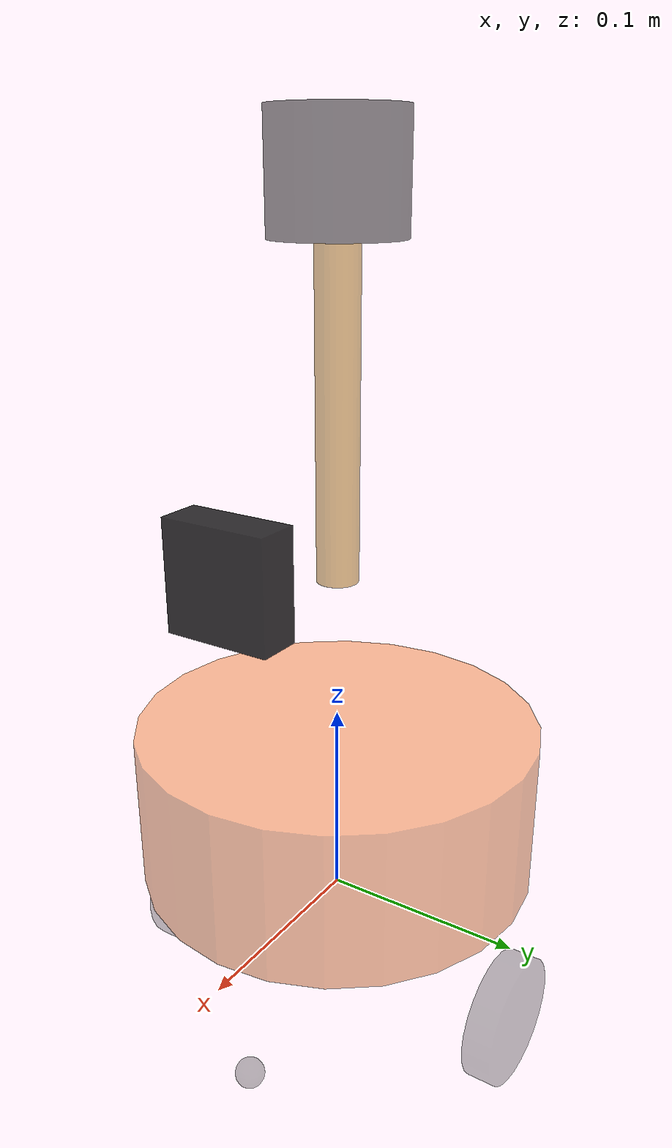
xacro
<robot name="mycar" xmlns:xacro="http://wiki.ros.org/xacro">
    <!-- 包含底盘、摄像头与雷达的 xacro 文件 -->
    <xacro:include filename="demo05_car_base.urdf.xacro" />
    <xacro:include filename="demo06_car_camera.urdf.xacro" />
    <xacro:include filename="demo07_car_laser.urdf.xacro" />
</robot>

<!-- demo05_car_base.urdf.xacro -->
<robot name="carbase" xmlns:xacro="http://wiki.ros.org/xacro">

    <xacro:property name="footprint_radius" value="0.0001" />
    <!-- 1.添加 base_footprint -->
    <link name="base_footprint">
        <visual>
            <geometry>
                <sphere radius="${footprint_radius}" />
            </geometry>
        </visual>
    </link>

    <!-- 2.添加底盘 -->
    <!--
        形状：圆柱
        半径：0.1m
        高度：0.08m
        离地间距：0.015m
     -->
    <xacro:property name="base_length" value="0.23" />
    <xacro:property name="lidi" value="0.015" />
    <xacro:property name="base_joint_z" value="${base_length / 2 + lidi}" />
    <!-- 2-1.link -->
    <link name="base_link">
    <visual>
        <geometry>
            <cylinder radius="0.1" length="0.08" />
        </geometry>

        <origin xyz="0 0 0" rpy="0 0 0" />

        <material name="baselink_color">
            <color rgba="1.0 0.5 0.2 0.5" />
        </material>
    </visual>
    </link>
    <!-- 2-2.joint -->
    <joint name="link2footprint" type="fixed">
        <parent link="base_footprint" />
        <child link="base_link" />
        <!-- z = 车体高度/2 + 离地间距 -->
        <origin xyz="0 0 0.055" rpy="0 0 0" />

    </joint>

    <!-- 3.添加驱动轮 -->
    <!--
        形状：圆柱
        半径：0.0325m
        长度：0.015m
     -->
    <xacro:property name="wheel_radius" value="0.0325" />
    <xacro:property name="wheel_length" value="0.015" />
    <xacro:property name="PI" value="3.1415927" />
    <xacro:property name="wheel_joint_z" value="${( base_length / 2 + lidi - wheel_radius) * -1}" />
    <!--
        wheel_name: left or right
        flag: 1 or -1
     -->
    <xacro:macro name="wheel_func" params="wheel_name flag">
        <!-- 3-1.link -->
        <!-- ${wheel_name} -->
        <link name="${wheel_name}_wheel">
            <visual>
                <geometry>
                    <cylinder radius="${wheel_radius}" length="${wheel_length}" />
                </geometry>

                <origin xyz="0 0 0" rpy="${PI / 2} 0 0" />

                <material name="wheel_color">
                    <color rgba="0 0 0 0.3" />
                </material>
            </visual>
        </link>

        <!-- 3-2.joint -->
        <!-- ${wheel_name}_wheel -->
        <joint name="${wheel_name}2link" type="continuous">
            <parent link="base_link" />
            <child link="${wheel_name}_wheel" />
            <!--
                x = 0
                y = 车体半径
                z = -(车体高度/2 + 离地间距 - 车轮半径)
            -->
            <origin xyz="0 ${0.1 * flag} ${wheel_joint_z}" rpy="0 0 0" />
            <axis xyz="0 1 0" />
        </joint>
    </xacro:macro>
    <!-- 调用 -->
    <xacro:wheel_func wheel_name="left" flag="1" />
    <xacro:wheel_func wheel_name="right" flag="-1" />

    <!-- 4.添加万向轮 -->
    <!--
        形状：球
        半径：0.0075m
     -->
    <xacro:property name="small_wheel_radius" value="0.0075" />
    <xacro:property name="small_joint_z" value="${( base_length / 2 + lidi - small_wheel_radius) * -1}" />
    <!-- 4-1.link -->
    <!-- front_wheel -->
    <xacro:macro name="small_wheel_func" params="small_wheel_name small_flag" >
        <link name="${small_wheel_name}_wheel">
            <visual>
                <geometry>
                    <sphere radius="0.0075" />
                </geometry>

                <origin xyz="0 0 0" rpy="0 0 0" />

                <material name="wheel_color">
                    <color rgba="0 0 0 0.3" />
                </material>
            </visual>
        </link>
        <!-- 4-2.joint -->
        <!-- front_wheel -->
        <joint name="${small_wheel_name}2link" type="continuous">
            <parent link="base_link" />
            <child link="${small_wheel_name}_wheel" />
            <!--
                x = 0
                y = 车体半径
                z = -(车体高度/2 + 离地间距 - 万向轮半径)
            -->
            <origin xyz="${0.08 * small_flag} 0 ${small_joint_z}" rpy="0 0 0" />
            <axis xyz="0 1 0" />
        </joint>
    </xacro:macro>
    <xacro:small_wheel_func small_wheel_name="front" small_flag="1" />
    <xacro:small_wheel_func small_wheel_name="back" small_flag="-1" />

</robot>

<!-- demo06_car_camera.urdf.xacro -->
<robot name="mycamera" xmlns:xacro="http://wiki.ros.org/xacro">
    <!-- camera 部件 -->
    <!-- 1.参数 -->
    <!--
        参数：
            连杆属性：厚度，宽度，高度
            关节属性：x y z
     -->
    <xacro:property name="camera_length" value="0.02" /> <!-- 摄像头长度(x) -->
    <xacro:property name="camera_width" value="0.05" /> <!-- 摄像头宽度(y) -->
    <xacro:property name="camera_height" value="0.05" /> <!-- 摄像头高度(z) -->
    <xacro:property name="joint_camera_x" value="0.08" /> <!-- 摄像头安装的x坐标 -->
    <xacro:property name="joint_camera_y" value="0" /> <!-- 摄像头安装的y坐标 -->
    <xacro:property name="joint_camera_z" value="${base_length / 2 + camera_height / 2}" />
    <!-- 2.设计连杆和关节 -->
    <!-- link -->
    <link name="camera">
        <visual>
            <geometry>
                <box size="${camera_length} ${camera_width} ${camera_height}" />
            </geometry>

            <material name="black">
                <color rgba="0 0 0 0.8" />
            </material>
        </visual>
    </link>
    <!-- joint -->
    <joint name="camera2base" type="fixed">
        <parent link="base_link" />
        <child link="camera" />
        <origin xyz="${joint_camera_x} ${joint_camera_y} ${joint_camera_z}" rpy=" 0 0 0" />
    </joint>
</robot>

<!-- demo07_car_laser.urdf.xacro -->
<robot name="mylaser" xmlns:xacro="http://wiki.ros.org/xacro">
    <!-- laser 部件 -->
    <!-- 参数 -->
    <!--1.支架
            支架尺寸：半径 高度
            关节偏移量： x y z
        2.雷达
            雷达尺寸：半径，高度
            关节偏移量： x y z
     -->
    <xacro:property name="support_radius" value="0.01" /> <!-- 支架半径 -->
    <xacro:property name="support_length" value="0.15" /> <!-- 支架长度 -->
    <xacro:property name="laser_radius" value="0.03" /> <!-- 雷达半径 -->
    <xacro:property name="laser_length" value="0.05" /> <!-- 雷达半径 -->

    <xacro:property name="joint_support_x" value="0" /> <!-- 支架安装的x坐标 -->
    <xacro:property name="joint_support_y" value="0" /> <!-- 支架安装的y坐标 -->
    <xacro:property name="joint_support_z" value="${base_length / 2 + support_length / 2}" />
    <xacro:property name="joint_laser_x" value="0" /> <!-- 支架雷达的x坐标 -->
    <xacro:property name="joint_laser_y" value="0" /> <!-- 支架雷达的y坐标 -->
    <xacro:property name="joint_laser_z" value="${support_length / 2 + laser_length / 2}" />

    <!-- 1.支架 -->
    <link name="support">
        <visual>
            <geometry>
                <cylinder radius="${support_radius}" length="${support_length}" />
            </geometry>
            <material name="yellow">
                <color rgba="0.8 0.5 0 0.5" />
            </material>
        </visual>
    </link>
    <joint name="support2base" type="fixed">
        <parent link="base_link" />
        <child link="support" />
        <origin xyz="${joint_support_x} ${joint_support_y} ${joint_support_z}" rpy="0 0 0" />
    </joint>

    <!-- 2.雷达 -->
    <link name="laser">
        <visual>
            <geometry>
                <cylinder radius="${laser_radius}" length="${laser_length}" />
            </geometry>
            <material name="yellow">
                <color rgba="0 0 0 0.5" />
            </material>
        </visual>
    </link>
    <joint name="laser2base" type="fixed">
        <parent link="support" />
        <child link="laser" />
        <origin xyz="${joint_laser_x} ${joint_laser_y} ${joint_laser_z}" rpy="0 0 0" />
    </joint>

</robot>
